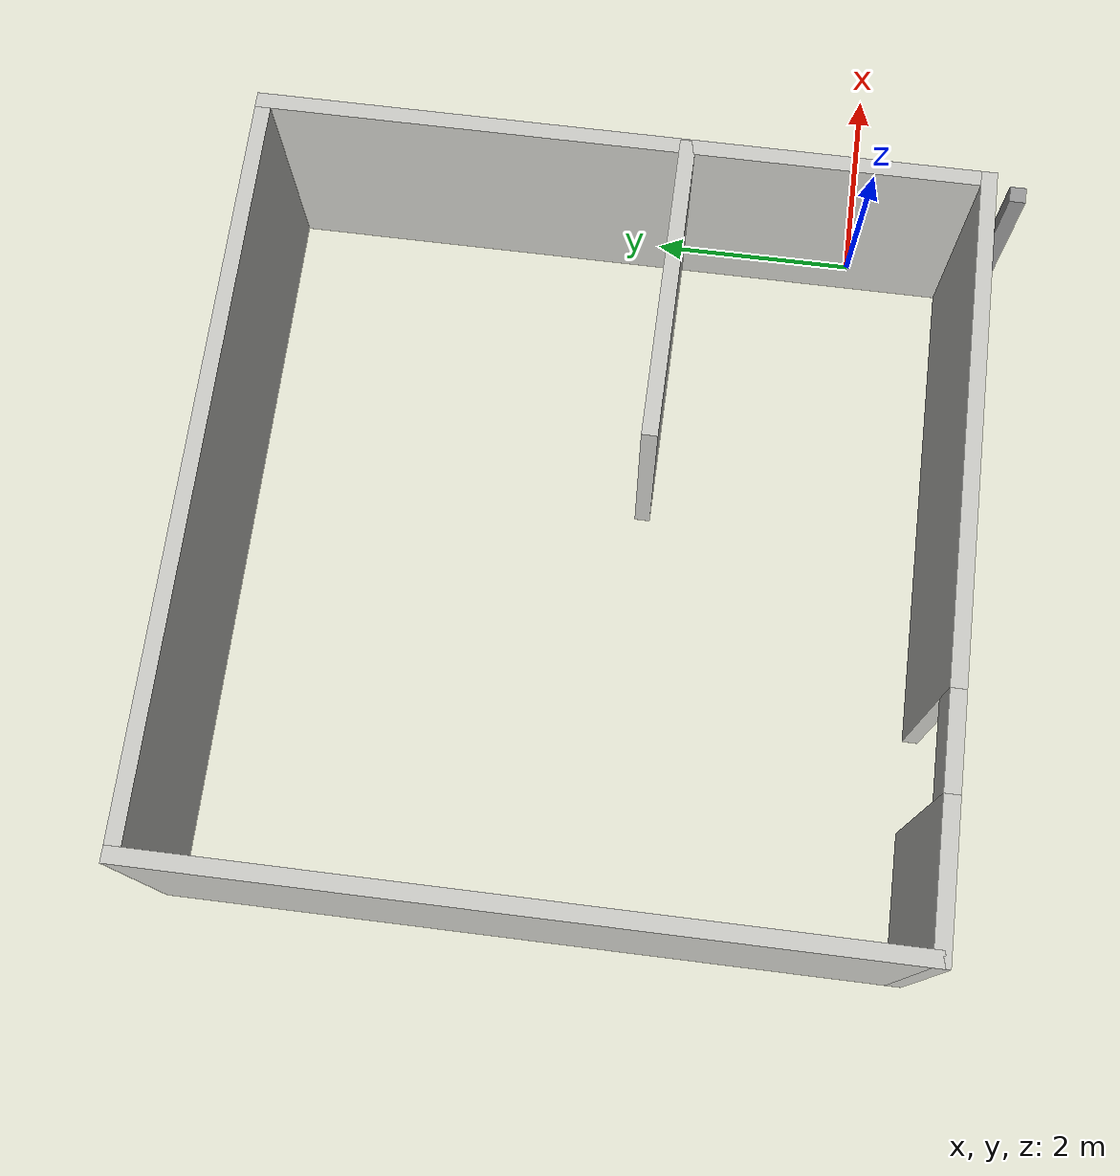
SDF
<?xml version='1.0'?>
<sdf version='1.7'>
  <model name='TestRoom.sdf'>
    <pose>-3.66784 2.27717 0 0 -0 0</pose>
    <link name='Wall_10'>
      <collision name='Wall_10_Collision'>
        <geometry>
          <box>
            <size>7 0.15 2.5</size>
          </box>
        </geometry>
        <pose>0 0 1.25 0 -0 0</pose>
      </collision>
      <visual name='Wall_10_Visual'>
        <pose>0 0 1.25 0 -0 0</pose>
        <geometry>
          <box>
            <size>7 0.15 2.5</size>
          </box>
        </geometry>
        <material>
          <script>
            <uri>file://media/materials/scripts/gazebo.material</uri>
            <name>Gazebo/CeilingTiled</name>
          </script>
          <ambient>1 1 1 1</ambient>
        </material>
        <meta>
          <layer>0</layer>
        </meta>
      </visual>
      <pose>3.50716 0.136292 0 0 -0 -1.5708</pose>
    </link>
    <link name='Wall_11'>
      <pose>-0.042836 -3.28871 0 0 -0 3.14159</pose>
      <visual name='Wall_11_Visual_0'>
        <pose>-1.1604 0 1.25 0 -0 0</pose>
        <geometry>
          <box>
            <size>4.9292 0.15 2.5</size>
          </box>
        </geometry>
        <material>
          <script>
            <uri>file://media/materials/scripts/gazebo.material</uri>
            <name>Gazebo/CeilingTiled</name>
          </script>
          <ambient>1 1 1 1</ambient>
        </material>
        <meta>
          <layer>0</layer>
        </meta>
      </visual>
      <collision name='Wall_11_Collision_0'>
        <geometry>
          <box>
            <size>4.9292 0.15 2.5</size>
          </box>
        </geometry>
        <pose>-1.1604 0 1.25 0 -0 0</pose>
      </collision>
      <visual name='Wall_11_Visual_1'>
        <pose>2.9146 0 1.25 0 -0 0</pose>
        <geometry>
          <box>
            <size>1.4208 0.15 2.5</size>
          </box>
        </geometry>
        <material>
          <script>
            <uri>file://media/materials/scripts/gazebo.material</uri>
            <name>Gazebo/CeilingTiled</name>
          </script>
          <ambient>1 1 1 1</ambient>
        </material>
        <meta>
          <layer>0</layer>
        </meta>
      </visual>
      <collision name='Wall_11_Collision_1'>
        <geometry>
          <box>
            <size>1.4208 0.15 2.5</size>
          </box>
        </geometry>
        <pose>2.9146 0 1.25 0 -0 0</pose>
      </collision>
      <visual name='Wall_11_Visual_2'>
        <pose>1.7542 0 2.25 0 -0 0</pose>
        <geometry>
          <box>
            <size>0.9 0.15 0.5</size>
          </box>
        </geometry>
        <material>
          <script>
            <uri>file://media/materials/scripts/gazebo.material</uri>
            <name>Gazebo/CeilingTiled</name>
          </script>
          <ambient>1 1 1 1</ambient>
        </material>
        <meta>
          <layer>0</layer>
        </meta>
      </visual>
      <collision name='Wall_11_Collision_2'>
        <geometry>
          <box>
            <size>0.9 0.15 0.5</size>
          </box>
        </geometry>
        <pose>1.7542 0 2.25 0 -0 0</pose>
      </collision>
    </link>
    <link name='Wall_16'>
      <collision name='Wall_16_Collision'>
        <geometry>
          <box>
            <size>2.96958 0.15 2.5</size>
          </box>
        </geometry>
        <pose>0 0 1.25 0 -0 0</pose>
      </collision>
      <visual name='Wall_16_Visual'>
        <pose>0 0 1.25 0 -0 0</pose>
        <geometry>
          <box>
            <size>2.96958 0.15 2.5</size>
          </box>
        </geometry>
        <material>
          <script>
            <uri>file://media/materials/scripts/gazebo.material</uri>
            <name>Gazebo/CeilingTiled</name>
          </script>
          <ambient>1 1 1 1</ambient>
        </material>
        <meta>
          <layer>0</layer>
        </meta>
      </visual>
      <pose>2.08537 -0.448736 0 0 -0 3.13074</pose>
    </link>
    <link name='Wall_3'>
      <collision name='Wall_3_Collision'>
        <geometry>
          <box>
            <size>0.15 0.15 2.5</size>
          </box>
        </geometry>
        <pose>0 0 1.25 0 -0 0</pose>
      </collision>
      <visual name='Wall_3_Visual'>
        <pose>0 0 1.25 0 -0 0</pose>
        <geometry>
          <box>
            <size>0.15 0.15 2.5</size>
          </box>
        </geometry>
        <material>
          <script>
            <uri>file://media/materials/scripts/gazebo.material</uri>
            <name>Gazebo/Grey</name>
          </script>
          <ambient>1 1 1 1</ambient>
        </material>
        <meta>
          <layer>0</layer>
        </meta>
      </visual>
      <pose>3.37754 -3.56129 0 0 -0 0</pose>
    </link>
    <link name='Wall_8'>
      <collision name='Wall_8_Collision'>
        <geometry>
          <box>
            <size>7 0.15 2.5</size>
          </box>
        </geometry>
        <pose>0 0 1.25 0 -0 0</pose>
      </collision>
      <visual name='Wall_8_Visual'>
        <pose>0 0 1.25 0 -0 0</pose>
        <geometry>
          <box>
            <size>7 0.15 2.5</size>
          </box>
        </geometry>
        <material>
          <script>
            <uri>file://media/materials/scripts/gazebo.material</uri>
            <name>Gazebo/CeilingTiled</name>
          </script>
          <ambient>1 1 1 1</ambient>
        </material>
        <meta>
          <layer>0</layer>
        </meta>
      </visual>
      <pose>-3.59284 0.136292 0 0 -0 1.5708</pose>
    </link>
    <link name='Wall_9'>
      <collision name='Wall_9_Collision'>
        <geometry>
          <box>
            <size>7.25 0.15 2.5</size>
          </box>
        </geometry>
        <pose>0 0 1.25 0 -0 0</pose>
      </collision>
      <visual name='Wall_9_Visual'>
        <pose>0 0 1.25 0 -0 0</pose>
        <geometry>
          <box>
            <size>7.25 0.15 2.5</size>
          </box>
        </geometry>
        <material>
          <script>
            <uri>file://media/materials/scripts/gazebo.material</uri>
            <name>Gazebo/CeilingTiled</name>
          </script>
          <ambient>1 1 1 1</ambient>
        </material>
        <meta>
          <layer>0</layer>
        </meta>
      </visual>
      <pose>-0.042836 3.56129 0 0 -0 0</pose>
    </link>
    <static>1</static>
  </model>
</sdf>
